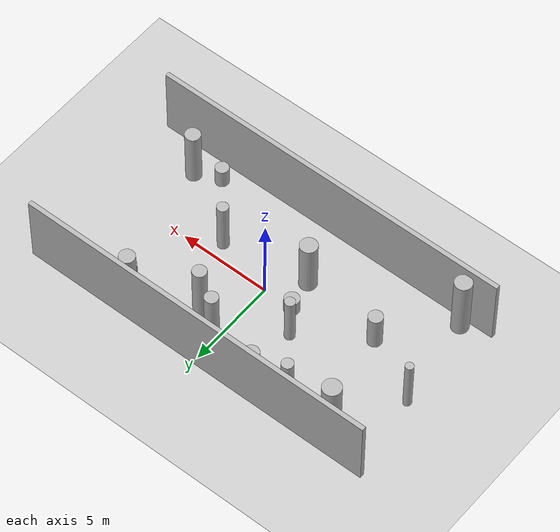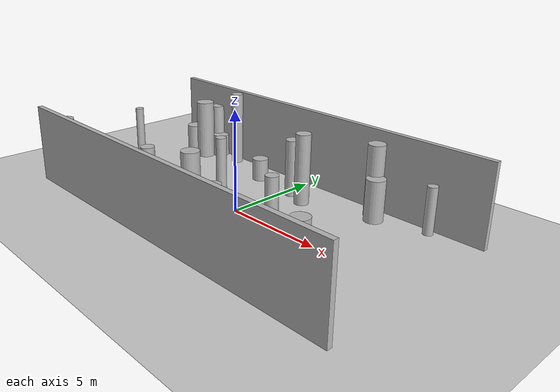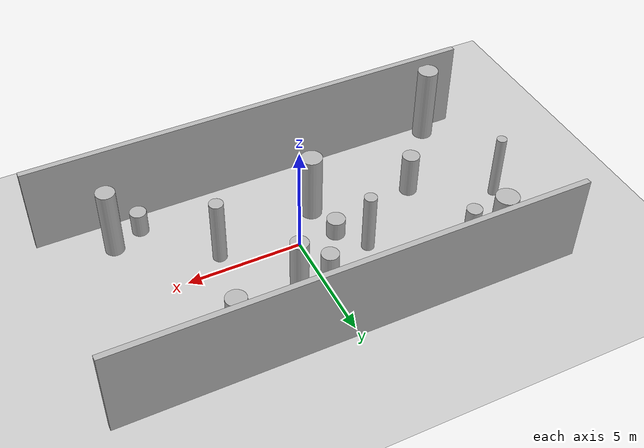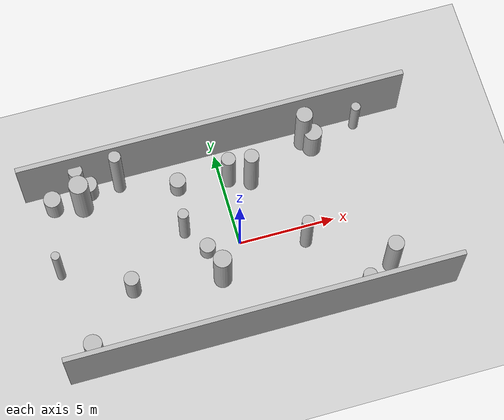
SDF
<?xml version="1.0"?>
<sdf version="1.4">
  <world name="default">
    <gui>
      <camera name="user_camera">
        <pose>-20 -30 40 0 0.66 0.83</pose>
      </camera>
    </gui>
    <include>
      <uri>model://ground_plane</uri>
    </include>
    <include>
      <uri>model://sun</uri>
    </include>
    <scene>
      <shadows>0</shadows>
    </scene>
    <model name="forest">
      <static>true</static>
      <link name="cylinder0">
        <pose>-7.183749232502663 4.012402408127205 1.6195095594588929 0 0 0 </pose>
        <visual name="visual">
          <geometry>
            <cylinder>
              <radius>0.4923516321191596</radius>
              <length>3.2390191189177857</length>
            </cylinder>
          </geometry>
        </visual>
        <collision name="collision">
          <geometry>
            <cylinder>
              <radius>0.4923516321191596</radius>
              <length>3.2390191189177857</length>
            </cylinder>
          </geometry>
          <max_contacts>0</max_contacts>
        </collision>
      </link>
      <link name="cylinder1">
        <pose>7.059082122589302 -3.1463922831060587 1.6031784114173353 0 0 0 </pose>
        <visual name="visual">
          <geometry>
            <cylinder>
              <radius>0.4097525741218271</radius>
              <length>3.2063568228346706</length>
            </cylinder>
          </geometry>
        </visual>
        <collision name="collision">
          <geometry>
            <cylinder>
              <radius>0.4097525741218271</radius>
              <length>3.2063568228346706</length>
            </cylinder>
          </geometry>
          <max_contacts>0</max_contacts>
        </collision>
      </link>
      <link name="cylinder2">
        <pose>-6.683060548785516 4.756134209822626 0.6191532202487984 0 0 0 </pose>
        <visual name="visual">
          <geometry>
            <cylinder>
              <radius>0.46262794286133885</radius>
              <length>1.2383064404975967</length>
            </cylinder>
          </geometry>
        </visual>
        <collision name="collision">
          <geometry>
            <cylinder>
              <radius>0.46262794286133885</radius>
              <length>1.2383064404975967</length>
            </cylinder>
          </geometry>
          <max_contacts>0</max_contacts>
        </collision>
      </link>
      <link name="cylinder3">
        <pose>5.735931552506566 -3.7222189494189406 0.5519229435717341 0 0 0 </pose>
        <visual name="visual">
          <geometry>
            <cylinder>
              <radius>0.3609628863931654</radius>
              <length>1.1038458871434682</length>
            </cylinder>
          </geometry>
        </visual>
        <collision name="collision">
          <geometry>
            <cylinder>
              <radius>0.3609628863931654</radius>
              <length>1.1038458871434682</length>
            </cylinder>
          </geometry>
          <max_contacts>0</max_contacts>
        </collision>
      </link>
      <link name="cylinder4">
        <pose>-5.819531168636665 -1.0097528497371444 0.9990491564176235 0 0 0 </pose>
        <visual name="visual">
          <geometry>
            <cylinder>
              <radius>0.3822817823492629</radius>
              <length>1.998098312835247</length>
            </cylinder>
          </geometry>
        </visual>
        <collision name="collision">
          <geometry>
            <cylinder>
              <radius>0.3822817823492629</radius>
              <length>1.998098312835247</length>
            </cylinder>
          </geometry>
          <max_contacts>0</max_contacts>
        </collision>
      </link>
      <link name="cylinder5">
        <pose>-8.62735534510733 4.345353779987521 0.7321968903795797 0 0 0 </pose>
        <visual name="visual">
          <geometry>
            <cylinder>
              <radius>0.4454800883227682</radius>
              <length>1.4643937807591594</length>
            </cylinder>
          </geometry>
        </visual>
        <collision name="collision">
          <geometry>
            <cylinder>
              <radius>0.4454800883227682</radius>
              <length>1.4643937807591594</length>
            </cylinder>
          </geometry>
          <max_contacts>0</max_contacts>
        </collision>
      </link>
      <link name="cylinder6">
        <pose>4.644327793845962 4.5087762667213465 1.7798702662981265 0 0 0 </pose>
        <visual name="visual">
          <geometry>
            <cylinder>
              <radius>0.418371127366986</radius>
              <length>3.559740532596253</length>
            </cylinder>
          </geometry>
        </visual>
        <collision name="collision">
          <geometry>
            <cylinder>
              <radius>0.418371127366986</radius>
              <length>3.559740532596253</length>
            </cylinder>
          </geometry>
          <max_contacts>0</max_contacts>
        </collision>
      </link>
      <link name="cylinder7">
        <pose>-7.157223157901578 4.9607744052752825 1.4259066448541058 0 0 0 </pose>
        <visual name="visual">
          <geometry>
            <cylinder>
              <radius>0.36241914943417597</radius>
              <length>2.8518132897082116</length>
            </cylinder>
          </geometry>
        </visual>
        <collision name="collision">
          <geometry>
            <cylinder>
              <radius>0.36241914943417597</radius>
              <length>2.8518132897082116</length>
            </cylinder>
          </geometry>
          <max_contacts>0</max_contacts>
        </collision>
      </link>
      <link name="cylinder8">
        <pose>-2.5438598334179607 1.293045226034585 1.3994205961759572 0 0 0 </pose>
        <visual name="visual">
          <geometry>
            <cylinder>
              <radius>0.2731573457600579</radius>
              <length>2.7988411923519143</length>
            </cylinder>
          </geometry>
        </visual>
        <collision name="collision">
          <geometry>
            <cylinder>
              <radius>0.2731573457600579</radius>
              <length>2.7988411923519143</length>
            </cylinder>
          </geometry>
          <max_contacts>0</max_contacts>
        </collision>
      </link>
      <link name="cylinder9">
        <pose>-8.430795742541985 -4.209148551128924 1.7878343534819363 0 0 0 </pose>
        <visual name="visual">
          <geometry>
            <cylinder>
              <radius>0.4555836890709833</radius>
              <length>3.5756687069638726</length>
            </cylinder>
          </geometry>
        </visual>
        <collision name="collision">
          <geometry>
            <cylinder>
              <radius>0.4555836890709833</radius>
              <length>3.5756687069638726</length>
            </cylinder>
          </geometry>
          <max_contacts>0</max_contacts>
        </collision>
      </link>
      <link name="cylinder10">
        <pose>5.03390873486126 4.092627705769969 1.0413416032992664 0 0 0 </pose>
        <visual name="visual">
          <geometry>
            <cylinder>
              <radius>0.4649543558199242</radius>
              <length>2.082683206598533</length>
            </cylinder>
          </geometry>
        </visual>
        <collision name="collision">
          <geometry>
            <cylinder>
              <radius>0.4649543558199242</radius>
              <length>2.082683206598533</length>
            </cylinder>
          </geometry>
          <max_contacts>0</max_contacts>
        </collision>
      </link>
      <link name="cylinder11">
        <pose>3.270921689078383 -0.8209088252346586 1.5166147487388553 0 0 0 </pose>
        <visual name="visual">
          <geometry>
            <cylinder>
              <radius>0.30282944039980375</radius>
              <length>3.0332294974777105</length>
            </cylinder>
          </geometry>
        </visual>
        <collision name="collision">
          <geometry>
            <cylinder>
              <radius>0.30282944039980375</radius>
              <length>3.0332294974777105</length>
            </cylinder>
          </geometry>
          <max_contacts>0</max_contacts>
        </collision>
      </link>
      <link name="cylinder12">
        <pose>-5.113885194371139 4.668111759407472 1.992528612860551 0 0 0 </pose>
        <visual name="visual">
          <geometry>
            <cylinder>
              <radius>0.3117014914049785</radius>
              <length>3.985057225721102</length>
            </cylinder>
          </geometry>
        </visual>
        <collision name="collision">
          <geometry>
            <cylinder>
              <radius>0.3117014914049785</radius>
              <length>3.985057225721102</length>
            </cylinder>
          </geometry>
          <max_contacts>0</max_contacts>
        </collision>
      </link>
      <link name="cylinder13">
        <pose>-2.2332952441731724 3.7643637559550633 0.5782558309321804 0 0 0 </pose>
        <visual name="visual">
          <geometry>
            <cylinder>
              <radius>0.41593881332415916</radius>
              <length>1.1565116618643607</length>
            </cylinder>
          </geometry>
        </visual>
        <collision name="collision">
          <geometry>
            <cylinder>
              <radius>0.41593881332415916</radius>
              <length>1.1565116618643607</length>
            </cylinder>
          </geometry>
          <max_contacts>0</max_contacts>
        </collision>
      </link>
      <link name="cylinder14">
        <pose>-1.3257590261555308 -1.6051087193432947 1.5471797480422544 0 0 0 </pose>
        <visual name="visual">
          <geometry>
            <cylinder>
              <radius>0.46161516282612997</radius>
              <length>3.094359496084509</length>
            </cylinder>
          </geometry>
        </visual>
        <collision name="collision">
          <geometry>
            <cylinder>
              <radius>0.46161516282612997</radius>
              <length>3.094359496084509</length>
            </cylinder>
          </geometry>
          <max_contacts>0</max_contacts>
        </collision>
      </link>
      <link name="cylinder15">
        <pose>1.464296049457916 3.042352858359356 1.7994379604730213 0 0 0 </pose>
        <visual name="visual">
          <geometry>
            <cylinder>
              <radius>0.37418577831827937</radius>
              <length>3.5988759209460426</length>
            </cylinder>
          </geometry>
        </visual>
        <collision name="collision">
          <geometry>
            <cylinder>
              <radius>0.37418577831827937</radius>
              <length>3.5988759209460426</length>
            </cylinder>
          </geometry>
          <max_contacts>0</max_contacts>
        </collision>
      </link>
      <link name="cylinder16">
        <pose>0.39023429537384047 3.4803638125333016 1.462936539672484 0 0 0 </pose>
        <visual name="visual">
          <geometry>
            <cylinder>
              <radius>0.3601994487096828</radius>
              <length>2.925873079344968</length>
            </cylinder>
          </geometry>
        </visual>
        <collision name="collision">
          <geometry>
            <cylinder>
              <radius>0.3601994487096828</radius>
              <length>2.925873079344968</length>
            </cylinder>
          </geometry>
          <max_contacts>0</max_contacts>
        </collision>
      </link>
      <link name="cylinder17">
        <pose>7.509253193626847 4.76426177056282 1.1515257687921492 0 0 0 </pose>
        <visual name="visual">
          <geometry>
            <cylinder>
              <radius>0.2395049457126633</radius>
              <length>2.3030515375842984</length>
            </cylinder>
          </geometry>
        </visual>
        <collision name="collision">
          <geometry>
            <cylinder>
              <radius>0.2395049457126633</radius>
              <length>2.3030515375842984</length>
            </cylinder>
          </geometry>
          <max_contacts>0</max_contacts>
        </collision>
      </link>
      <link name="cylinder18">
        <pose>-9.133598769580287 0.7588452845946234 1.523811695239888 0 0 0 </pose>
        <visual name="visual">
          <geometry>
            <cylinder>
              <radius>0.22119030233082482</radius>
              <length>3.047623390479776</length>
            </cylinder>
          </geometry>
        </visual>
        <collision name="collision">
          <geometry>
            <cylinder>
              <radius>0.22119030233082482</radius>
              <length>3.047623390479776</length>
            </cylinder>
          </geometry>
          <max_contacts>0</max_contacts>
        </collision>
      </link>
      <link name="cylinder19">
        <pose>-1.6656740513017176 0.04813911280859706 0.44195424469179895 0 0 0 </pose>
        <visual name="visual">
          <geometry>
            <cylinder>
              <radius>0.4016340646643449</radius>
              <length>0.8839084893835979</length>
            </cylinder>
          </geometry>
        </visual>
        <collision name="collision">
          <geometry>
            <cylinder>
              <radius>0.4016340646643449</radius>
              <length>0.8839084893835979</length>
            </cylinder>
          </geometry>
          <max_contacts>0</max_contacts>
        </collision>
      </link>
      <link name="cube0">
        <pose>0 5.25 2.0 0 0 0 </pose>
        <visual name="visual">
          <geometry>
            <box>
              <size>20 0.25 4.0</size>
            </box>
          </geometry>
        </visual>
        <collision name="collision">
          <geometry>
            <box>
              <size>20 0.25 4.0</size>
            </box>
          </geometry>
          <max_contacts>0</max_contacts>
        </collision>
      </link>
      <link name="cube1">
        <pose>0 -4.75 2.0 0 0 0 </pose>
        <visual name="visual">
          <geometry>
            <box>
              <size>20 0.25 4.0</size>
            </box>
          </geometry>
        </visual>
        <collision name="collision">
          <geometry>
            <box>
              <size>20 0.25 4.0</size>
            </box>
          </geometry>
          <max_contacts>0</max_contacts>
        </collision>
      </link>
    </model>
    <!-- Plugins -->
    <plugin name="gazebo_octomap" filename="librotors_gazebo_octomap_plugin.so"/>
    <plugin name="ros_interface_plugin" filename="librotors_gazebo_ros_interface_plugin.so"/>
    <!-- Physics -->
    <physics name="default_physics" default="0" type="ode">
      <max_step_size>0.004</max_step_size>
      <real_time_factor>1</real_time_factor>
      <real_time_update_rate>250</real_time_update_rate>
      <gravity>0 0 -9.8</gravity>
      <magnetic_field>6e-06 2.3e-05 -4.2e-05</magnetic_field>
      <ode>
        <solver>
          <type>quick</type>
          <iters>1000</iters>
          <sor>1.3</sor>
          <use_dynamic_moi_rescaling>0</use_dynamic_moi_rescaling>
        </solver>
        <constraints>
          <cfm>0</cfm>
          <erp>0.2</erp>
          <contact_max_correcting_vel>100</contact_max_correcting_vel>
          <contact_surface_layer>0.001</contact_surface_layer>
        </constraints>
      </ode>
    </physics>
  </world>
</sdf>
